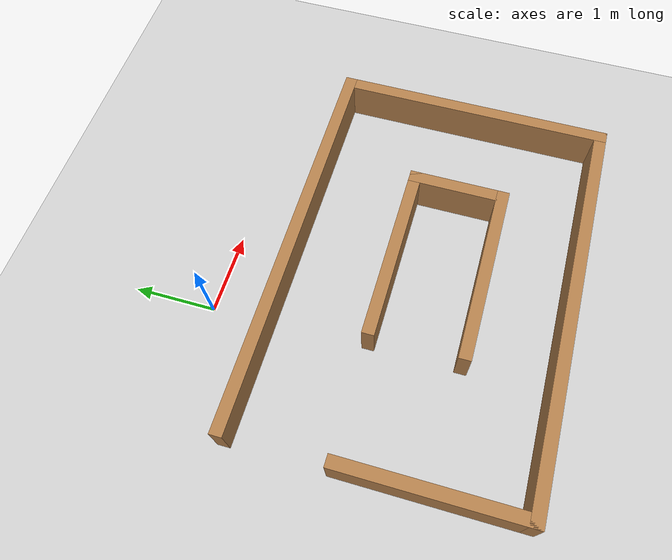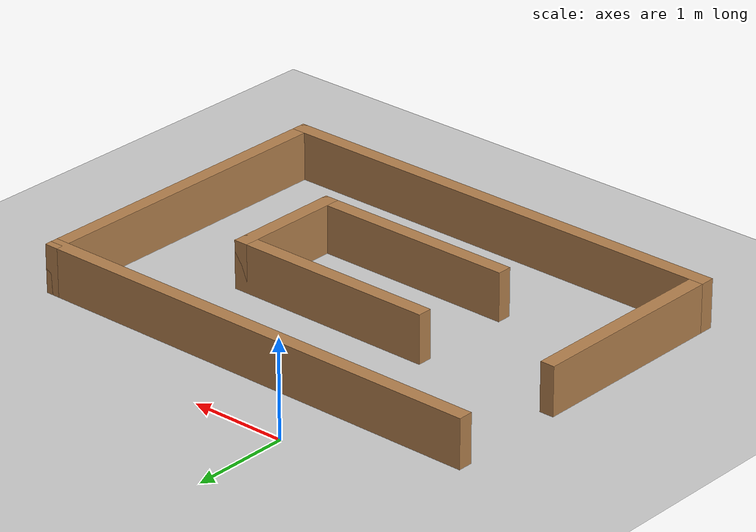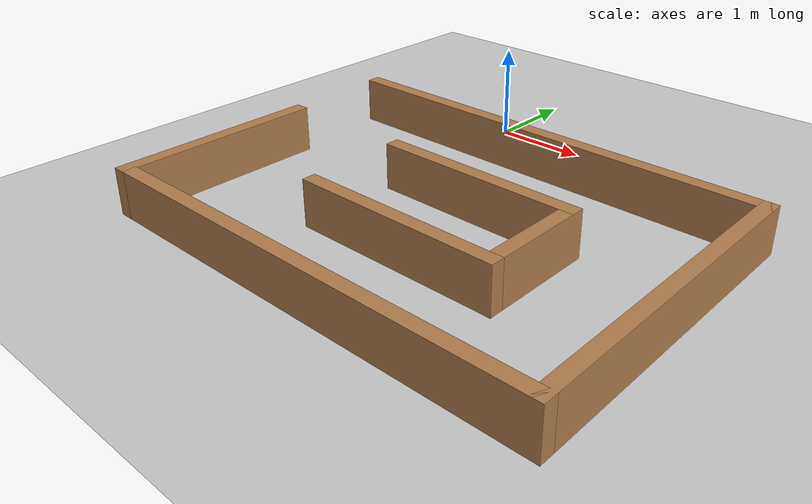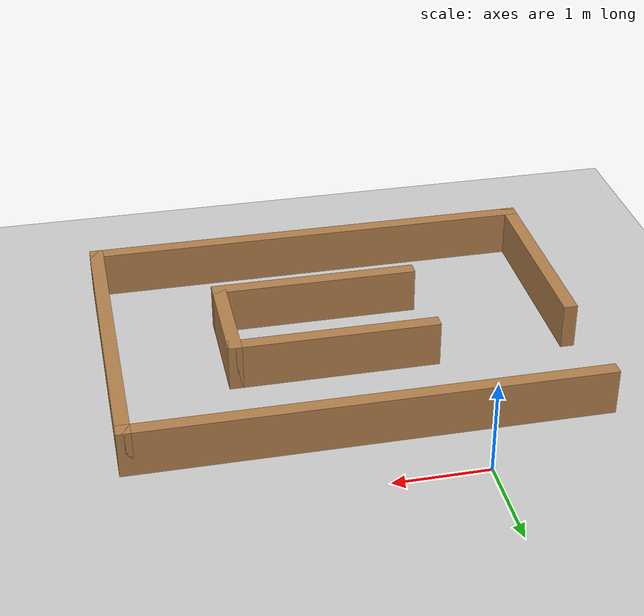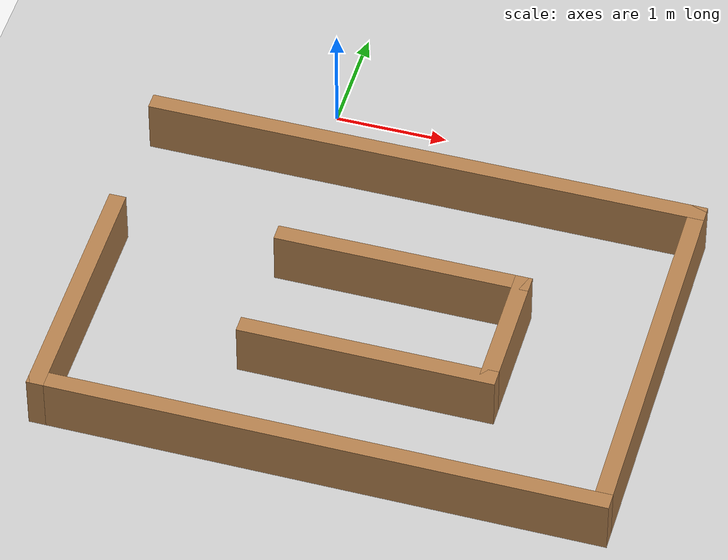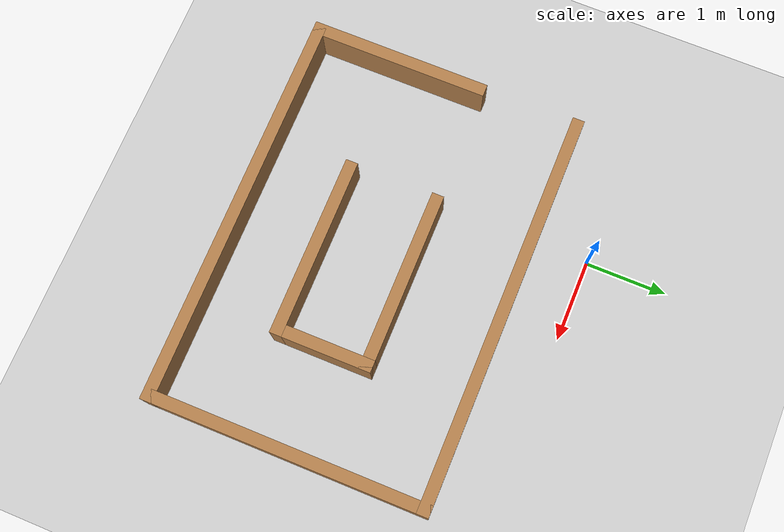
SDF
<sdf version="1.7">
 <world name="default">
  <light name="sun" type="directional">
   <pose>0 0 10 0 -0 0</pose>
   <diffuse>0.8 0.8 0.8 1</diffuse>
   <specular>0.2 0.2 0.2 1</specular>
   <attenuation>
    <range>1000</range>
    <constant>0.9</constant>
    <linear>0.01</linear>
    <quadratic>0.001</quadratic>
   </attenuation>
   <direction>-0.5 0.1 -0.9</direction>
   <spot><inner_angle>0</inner_angle><outer_angle>0</outer_angle><falloff>0</falloff></spot>
  </light>
  <model name="ground_plane">
   <static>1</static>
   <link name="link">
    <collision name="collision">
     <geometry><plane><normal>0 0 1</normal><size>100 100</size></plane></geometry>
     <surface>
      <contact><collide_bitmask>65535</collide_bitmask></contact>
      <friction><ode><mu>100</mu><mu2>50</mu2></ode></friction>
     </surface>
    </collision>
    <visual name="visual">
     <cast_shadows>0</cast_shadows>
     <geometry><plane><normal>0 0 1</normal><size>100 100</size></plane></geometry>
     <material>
      <script><uri>file://media/materials/scripts/gazebo.material</uri><name>Gazebo/Grey</name></script>
     </material>
    </visual>
   </link>
  </model>
  <gravity>0 0 -9.8</gravity>
  <magnetic_field>6e-06 2.3e-05 -4.2e-05</magnetic_field>
  <atmosphere type="adiabatic"/>
  <physics type="ode">
   <max_step_size>0.001</max_step_size>
   <real_time_factor>1</real_time_factor>
   <real_time_update_rate>1000</real_time_update_rate>
  </physics>
  <scene><ambient>0.4 0.4 0.4 1</ambient><background>0.7 0.7 0.7 1</background><shadows>1</shadows></scene>
  <spherical_coordinates>
   <surface_model>EARTH_WGS84</surface_model>
   <latitude_deg>0</latitude_deg>
   <longitude_deg>0</longitude_deg>
   <elevation>0</elevation>
   <heading_deg>0</heading_deg>
  </spherical_coordinates>
  <model name="testWorld">
   <link name="Wall_1">
    <pose>0 1.3575 0 0 -0 0</pose>
    <inertial>
     <mass>1</mass>
     <inertia><ixx>1</ixx><ixy>0</ixy><ixz>0</ixz><iyy>1</iyy><iyz>0</iyz><izz>1</izz></inertia>
    </inertial>
    <visual name="Wall_1_Visual">
     <pose>0 0 0.25 0 -0 0</pose>
     <geometry><box><size>5 0.15 0.5</size></box></geometry>
     <material>
      <script><uri>file://media/materials/scripts/gazebo.material</uri><name>Gazebo/Wood</name></script>
      <ambient>1 1 1 1</ambient>
      <shader type="pixel"><normal_map>__default__</normal_map></shader>
      <diffuse>1 1 1 1</diffuse>
      <specular>0.2 0.2 0.2 1</specular>
      <emissive>0 0 0 1</emissive>
     </material>
     <meta><layer>0</layer></meta>
    </visual>
    <collision name="Wall_1_Collision">
     <pose>0 0 1.25 0 -0 0</pose>
     <geometry><box><size>5 0.15 2.5</size></box></geometry>
     <surface>
      <friction>
       <ode><mu>1</mu><mu2>1</mu2><fdir1>0 0 0</fdir1><slip1>0</slip1><slip2>0</slip2></ode>
       <torsional>
        <coefficient>1</coefficient>
        <patch_radius>0</patch_radius>
        <surface_radius>0</surface_radius>
        <use_patch_radius>1</use_patch_radius>
        <ode><slip>0</slip></ode>
       </torsional>
      </friction>
      <bounce><restitution_coefficient>0</restitution_coefficient><threshold>1e+06</threshold></bounce>
      <contact>
       <collide_without_contact>0</collide_without_contact>
       <collide_without_contact_bitmask>1</collide_without_contact_bitmask>
       <collide_bitmask>1</collide_bitmask>
       <ode>
        <soft_cfm>0</soft_cfm>
        <soft_erp>0.2</soft_erp>
        <kp>1e+13</kp>
        <kd>1</kd>
        <max_vel>0.01</max_vel>
        <min_depth>0</min_depth>
       </ode>
       <bullet>
        <split_impulse>1</split_impulse>
        <split_impulse_penetration_threshold>-0.01</split_impulse_penetration_threshold>
        <soft_cfm>0</soft_cfm>
        <soft_erp>0.2</soft_erp>
        <kp>1e+13</kp>
        <kd>1</kd>
       </bullet>
      </contact>
     </surface>
    </collision>
   </link>
   <link name="Wall_2">
    <pose>2.425 -0.3175 0 0 0 -1.5708</pose>
    <inertial>
     <mass>1</mass>
     <inertia><ixx>1</ixx><ixy>0</ixy><ixz>0</ixz><iyy>1</iyy><iyz>0</iyz><izz>1</izz></inertia>
    </inertial>
    <visual name="Wall_2_Visual">
     <pose>0 0 0.25 0 -0 0</pose>
     <geometry><box><size>3.5 0.15 0.5</size></box></geometry>
     <material>
      <script><uri>file://media/materials/scripts/gazebo.material</uri><name>Gazebo/Wood</name></script>
      <ambient>1 1 1 1</ambient>
      <shader type="pixel"><normal_map>__default__</normal_map></shader>
      <diffuse>1 1 1 1</diffuse>
      <specular>0.2 0.2 0.2 1</specular>
      <emissive>0 0 0 1</emissive>
     </material>
     <meta><layer>0</layer></meta>
    </visual>
    <collision name="Wall_2_Collision">
     <pose>0 0 1.25 0 -0 0</pose>
     <geometry><box><size>3.5 0.15 2.5</size></box></geometry>
     <surface>
      <friction>
       <ode><mu>1</mu><mu2>1</mu2><fdir1>0 0 0</fdir1><slip1>0</slip1><slip2>0</slip2></ode>
       <torsional>
        <coefficient>1</coefficient>
        <patch_radius>0</patch_radius>
        <surface_radius>0</surface_radius>
        <use_patch_radius>1</use_patch_radius>
        <ode><slip>0</slip></ode>
       </torsional>
      </friction>
      <bounce><restitution_coefficient>0</restitution_coefficient><threshold>1e+06</threshold></bounce>
      <contact>
       <collide_without_contact>0</collide_without_contact>
       <collide_without_contact_bitmask>1</collide_without_contact_bitmask>
       <collide_bitmask>1</collide_bitmask>
       <ode>
        <soft_cfm>0</soft_cfm>
        <soft_erp>0.2</soft_erp>
        <kp>1e+13</kp>
        <kd>1</kd>
        <max_vel>0.01</max_vel>
        <min_depth>0</min_depth>
       </ode>
       <bullet>
        <split_impulse>1</split_impulse>
        <split_impulse_penetration_threshold>-0.01</split_impulse_penetration_threshold>
        <soft_cfm>0</soft_cfm>
        <soft_erp>0.2</soft_erp>
        <kp>1e+13</kp>
        <kd>1</kd>
       </bullet>
      </contact>
     </surface>
    </collision>
   </link>
   <link name="Wall_3">
    <pose>0 -1.9925 0 0 -0 3.14159</pose>
    <inertial>
     <mass>1</mass>
     <inertia><ixx>1</ixx><ixy>0</ixy><ixz>0</ixz><iyy>1</iyy><iyz>0</iyz><izz>1</izz></inertia>
    </inertial>
    <visual name="Wall_3_Visual">
     <pose>0 0 0.25 0 -0 0</pose>
     <geometry><box><size>5 0.15 0.5</size></box></geometry>
     <material>
      <script><uri>file://media/materials/scripts/gazebo.material</uri><name>Gazebo/Wood</name></script>
      <ambient>1 1 1 1</ambient>
      <shader type="pixel"><normal_map>__default__</normal_map></shader>
      <diffuse>1 1 1 1</diffuse>
      <specular>0.2 0.2 0.2 1</specular>
      <emissive>0 0 0 1</emissive>
     </material>
     <meta><layer>0</layer></meta>
    </visual>
    <collision name="Wall_3_Collision">
     <pose>0 0 1.25 0 -0 0</pose>
     <geometry><box><size>5 0.15 2.5</size></box></geometry>
     <surface>
      <friction>
       <ode><mu>1</mu><mu2>1</mu2><fdir1>0 0 0</fdir1><slip1>0</slip1><slip2>0</slip2></ode>
       <torsional>
        <coefficient>1</coefficient>
        <patch_radius>0</patch_radius>
        <surface_radius>0</surface_radius>
        <use_patch_radius>1</use_patch_radius>
        <ode><slip>0</slip></ode>
       </torsional>
      </friction>
      <bounce><restitution_coefficient>0</restitution_coefficient><threshold>1e+06</threshold></bounce>
      <contact>
       <collide_without_contact>0</collide_without_contact>
       <collide_without_contact_bitmask>1</collide_without_contact_bitmask>
       <collide_bitmask>1</collide_bitmask>
       <ode>
        <soft_cfm>0</soft_cfm>
        <soft_erp>0.2</soft_erp>
        <kp>1e+13</kp>
        <kd>1</kd>
        <max_vel>0.01</max_vel>
        <min_depth>0</min_depth>
       </ode>
       <bullet>
        <split_impulse>1</split_impulse>
        <split_impulse_penetration_threshold>-0.01</split_impulse_penetration_threshold>
        <soft_cfm>0</soft_cfm>
        <soft_erp>0.2</soft_erp>
        <kp>1e+13</kp>
        <kd>1</kd>
       </bullet>
      </contact>
     </surface>
    </collision>
   </link>
   <link name="Wall_4">
    <pose>-2.425 -0.9425 0 0 -0 1.5708</pose>
    <inertial>
     <mass>1</mass>
     <inertia><ixx>1</ixx><ixy>0</ixy><ixz>0</ixz><iyy>1</iyy><iyz>0</iyz><izz>1</izz></inertia>
    </inertial>
    <visual name="Wall_4_Visual">
     <pose>0 0 0.25 0 -0 0</pose>
     <geometry><box><size>2.25 0.15 0.5</size></box></geometry>
     <material>
      <script><uri>file://media/materials/scripts/gazebo.material</uri><name>Gazebo/Wood</name></script>
      <ambient>1 1 1 1</ambient>
      <shader type="pixel"><normal_map>__default__</normal_map></shader>
      <diffuse>1 1 1 1</diffuse>
      <specular>0.2 0.2 0.2 1</specular>
      <emissive>0 0 0 1</emissive>
     </material>
     <meta><layer>0</layer></meta>
    </visual>
    <collision name="Wall_4_Collision">
     <pose>0 0 1.25 0 -0 0</pose>
     <geometry><box><size>2.25 0.15 2.5</size></box></geometry>
     <surface>
      <friction>
       <ode><mu>1</mu><mu2>1</mu2><fdir1>0 0 0</fdir1><slip1>0</slip1><slip2>0</slip2></ode>
       <torsional>
        <coefficient>1</coefficient>
        <patch_radius>0</patch_radius>
        <surface_radius>0</surface_radius>
        <use_patch_radius>1</use_patch_radius>
        <ode><slip>0</slip></ode>
       </torsional>
      </friction>
      <bounce><restitution_coefficient>0</restitution_coefficient><threshold>1e+06</threshold></bounce>
      <contact>
       <collide_without_contact>0</collide_without_contact>
       <collide_without_contact_bitmask>1</collide_without_contact_bitmask>
       <collide_bitmask>1</collide_bitmask>
       <ode>
        <soft_cfm>0</soft_cfm>
        <soft_erp>0.2</soft_erp>
        <kp>1e+13</kp>
        <kd>1</kd>
        <max_vel>0.01</max_vel>
        <min_depth>0</min_depth>
       </ode>
       <bullet>
        <split_impulse>1</split_impulse>
        <split_impulse_penetration_threshold>-0.01</split_impulse_penetration_threshold>
        <soft_cfm>0</soft_cfm>
        <soft_erp>0.2</soft_erp>
        <kp>1e+13</kp>
        <kd>1</kd>
       </bullet>
      </contact>
     </surface>
    </collision>
   </link>
   <link name="Wall_6">
    <pose>0.135 0.1475 0 0 -0 0</pose>
    <inertial>
     <mass>1</mass>
     <inertia><ixx>1</ixx><ixy>0</ixy><ixz>0</ixz><iyy>1</iyy><iyz>0</iyz><izz>1</izz></inertia>
    </inertial>
    <visual name="Wall_6_Visual">
     <pose>0 0 0.25 0 -0 0</pose>
     <geometry><box><size>2.25 0.15 0.5</size></box></geometry>
     <material>
      <script><uri>file://media/materials/scripts/gazebo.material</uri><name>Gazebo/Wood</name></script>
      <ambient>1 1 1 1</ambient>
      <shader type="pixel"><normal_map>__default__</normal_map></shader>
      <diffuse>1 1 1 1</diffuse>
      <specular>0.2 0.2 0.2 1</specular>
      <emissive>0 0 0 1</emissive>
     </material>
     <meta><layer>0</layer></meta>
    </visual>
    <collision name="Wall_6_Collision">
     <pose>0 0 1.25 0 -0 0</pose>
     <geometry><box><size>2.25 0.15 2.5</size></box></geometry>
     <surface>
      <friction>
       <ode><mu>1</mu><mu2>1</mu2><fdir1>0 0 0</fdir1><slip1>0</slip1><slip2>0</slip2></ode>
       <torsional>
        <coefficient>1</coefficient>
        <patch_radius>0</patch_radius>
        <surface_radius>0</surface_radius>
        <use_patch_radius>1</use_patch_radius>
        <ode><slip>0</slip></ode>
       </torsional>
      </friction>
      <bounce><restitution_coefficient>0</restitution_coefficient><threshold>1e+06</threshold></bounce>
      <contact>
       <collide_without_contact>0</collide_without_contact>
       <collide_without_contact_bitmask>1</collide_without_contact_bitmask>
       <collide_bitmask>1</collide_bitmask>
       <ode>
        <soft_cfm>0</soft_cfm>
        <soft_erp>0.2</soft_erp>
        <kp>1e+13</kp>
        <kd>1</kd>
        <max_vel>0.01</max_vel>
        <min_depth>0</min_depth>
       </ode>
       <bullet>
        <split_impulse>1</split_impulse>
        <split_impulse_penetration_threshold>-0.01</split_impulse_penetration_threshold>
        <soft_cfm>0</soft_cfm>
        <soft_erp>0.2</soft_erp>
        <kp>1e+13</kp>
        <kd>1</kd>
       </bullet>
      </contact>
     </surface>
    </collision>
   </link>
   <link name="Wall_7">
    <pose>1.185 -0.4025 0 0 0 -1.5708</pose>
    <inertial>
     <mass>1</mass>
     <inertia><ixx>1</ixx><ixy>0</ixy><ixz>0</ixz><iyy>1</iyy><iyz>0</iyz><izz>1</izz></inertia>
    </inertial>
    <visual name="Wall_7_Visual">
     <pose>0 0 0.25 0 -0 0</pose>
     <geometry><box><size>1.25 0.15 0.5</size></box></geometry>
     <material>
      <script><uri>file://media/materials/scripts/gazebo.material</uri><name>Gazebo/Wood</name></script>
      <ambient>1 1 1 1</ambient>
      <shader type="pixel"><normal_map>__default__</normal_map></shader>
      <diffuse>1 1 1 1</diffuse>
      <specular>0.2 0.2 0.2 1</specular>
      <emissive>0 0 0 1</emissive>
     </material>
     <meta><layer>0</layer></meta>
    </visual>
    <collision name="Wall_7_Collision">
     <pose>0 0 1.25 0 -0 0</pose>
     <geometry><box><size>1.25 0.15 2.5</size></box></geometry>
     <surface>
      <friction>
       <ode><mu>1</mu><mu2>1</mu2><fdir1>0 0 0</fdir1><slip1>0</slip1><slip2>0</slip2></ode>
       <torsional>
        <coefficient>1</coefficient>
        <patch_radius>0</patch_radius>
        <surface_radius>0</surface_radius>
        <use_patch_radius>1</use_patch_radius>
        <ode><slip>0</slip></ode>
       </torsional>
      </friction>
      <bounce><restitution_coefficient>0</restitution_coefficient><threshold>1e+06</threshold></bounce>
      <contact>
       <collide_without_contact>0</collide_without_contact>
       <collide_without_contact_bitmask>1</collide_without_contact_bitmask>
       <collide_bitmask>1</collide_bitmask>
       <ode>
        <soft_cfm>0</soft_cfm>
        <soft_erp>0.2</soft_erp>
        <kp>1e+13</kp>
        <kd>1</kd>
        <max_vel>0.01</max_vel>
        <min_depth>0</min_depth>
       </ode>
       <bullet>
        <split_impulse>1</split_impulse>
        <split_impulse_penetration_threshold>-0.01</split_impulse_penetration_threshold>
        <soft_cfm>0</soft_cfm>
        <soft_erp>0.2</soft_erp>
        <kp>1e+13</kp>
        <kd>1</kd>
       </bullet>
      </contact>
     </surface>
    </collision>
   </link>
   <link name="Wall_8">
    <pose>0.135 -0.9525 0 0 -0 3.14159</pose>
    <inertial>
     <mass>1</mass>
     <inertia><ixx>1</ixx><ixy>0</ixy><ixz>0</ixz><iyy>1</iyy><iyz>0</iyz><izz>1</izz></inertia>
    </inertial>
    <visual name="Wall_8_Visual">
     <pose>0 0 0.25 0 -0 0</pose>
     <geometry><box><size>2.25 0.15 0.5</size></box></geometry>
     <material>
      <script><uri>file://media/materials/scripts/gazebo.material</uri><name>Gazebo/Wood</name></script>
      <ambient>1 1 1 1</ambient>
      <shader type="pixel"><normal_map>__default__</normal_map></shader>
      <diffuse>1 1 1 1</diffuse>
      <specular>0.2 0.2 0.2 1</specular>
      <emissive>0 0 0 1</emissive>
     </material>
     <meta><layer>0</layer></meta>
    </visual>
    <collision name="Wall_8_Collision">
     <pose>0 0 1.25 0 -0 0</pose>
     <geometry><box><size>2.25 0.15 2.5</size></box></geometry>
     <surface>
      <friction>
       <ode><mu>1</mu><mu2>1</mu2><fdir1>0 0 0</fdir1><slip1>0</slip1><slip2>0</slip2></ode>
       <torsional>
        <coefficient>1</coefficient>
        <patch_radius>0</patch_radius>
        <surface_radius>0</surface_radius>
        <use_patch_radius>1</use_patch_radius>
        <ode><slip>0</slip></ode>
       </torsional>
      </friction>
      <bounce><restitution_coefficient>0</restitution_coefficient><threshold>1e+06</threshold></bounce>
      <contact>
       <collide_without_contact>0</collide_without_contact>
       <collide_without_contact_bitmask>1</collide_without_contact_bitmask>
       <collide_bitmask>1</collide_bitmask>
       <ode>
        <soft_cfm>0</soft_cfm>
        <soft_erp>0.2</soft_erp>
        <kp>1e+13</kp>
        <kd>1</kd>
        <max_vel>0.01</max_vel>
        <min_depth>0</min_depth>
       </ode>
       <bullet>
        <split_impulse>1</split_impulse>
        <split_impulse_penetration_threshold>-0.01</split_impulse_penetration_threshold>
        <soft_cfm>0</soft_cfm>
        <soft_erp>0.2</soft_erp>
        <kp>1e+13</kp>
        <kd>1</kd>
       </bullet>
      </contact>
     </surface>
    </collision>
   </link>
   <static>1</static>
   <pose>1.005 -2.0675 0 0 -0 0</pose>
  </model>
 </world>
</sdf>
